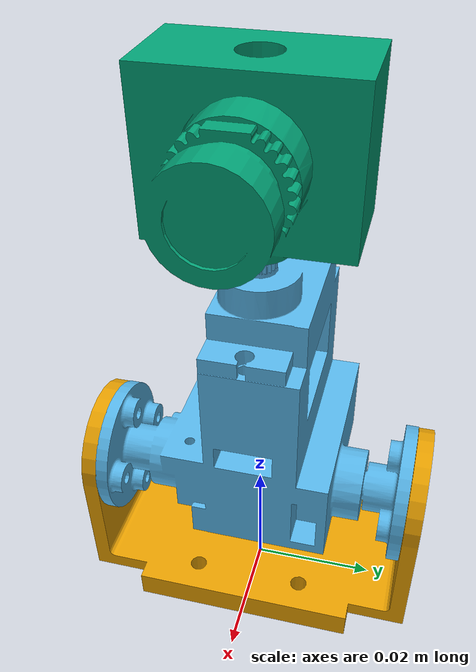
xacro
<?xml version="1.0"?>

<robot name="pan_tilt" xmlns:xacro="http://www.ros.org/wiki/xacro">
    <link name="base_link">
        <visual>
            <origin xyz="0.00 0.00 0.00" rpy="0.00 0.00 0.00"/>
            <geometry>
                <mesh filename="package://pan_tilt_description/meshes/Base-Link.STL" />
            </geometry>
        </visual>
        <collision>
            <origin xyz="0.00 0.00 0.00" rpy="0.00 0.00 0.00"/>
            <geometry>
                <mesh filename="package://pan_tilt_description/meshes/Base-Link-col.STL" />
            </geometry>
        </collision>
        <inertial>
            <mass value="0.022"/>
            <origin xyz="0.000 0.000 0.007" rpy="0.0 0.0 0.0"/>
            <inertia ixx="0.000009" ixy="0.000000" ixz="0.000000"
                     iyy="0.000003" iyz="0.000000"
                     izz="0.000009" />
        </inertial>
    </link>

    <joint name="tilt_joint" type="revolute">
        <parent link="base_link"/>
        <child link="tilt_link"/>
        <origin xyz="0.00 -0.025 0.022" rpy="0.00 0.00 0.00"/>
        <axis xyz="0 1 0"/>
        <limit velocity="3.14" effort="10" lower="-3.14" upper="3.14"/>
    </joint>

    <link name="tilt_link">
        <visual>
            <origin xyz="0.00 0.00 0.00" rpy="0.00 0.00 0.00"/>
            <geometry>
                <mesh filename="package://pan_tilt_description/meshes/Tilt-Link.STL" />
            </geometry>
        </visual>
        <collision>
            <origin xyz="0.00 0.00 0.00" rpy="0.00 0.00 0.00"/>
            <geometry>
                <mesh filename="package://pan_tilt_description/meshes/Tilt-Link-col.STL" />
            </geometry>
        </collision>
        <inertial>
            <mass value="0.070"/>
            <origin xyz="-0.005 0.025 0.010" rpy="0.0 0.0 0.0"/>
            <inertia ixx="0.000016" ixy="0.000000" ixz="0.000000"
                     iyy="0.000016" iyz="0.000000"
                     izz="0.000011" />
        </inertial>
    </link>

    <joint name="pan_joint" type="revolute">
        <parent link="tilt_link"/>
        <child link="pan_link"/>
        <origin xyz="0.00 0.025 0.042" rpy="0.00 0.00 0.00"/>
        <axis xyz="0 0 1"/>
        <limit velocity="3.14" effort="10" lower="-3.14" upper="3.14"/>
    </joint>

    <link name="pan_link">
        <visual>
            <origin xyz="0.00 0.00 0.00" rpy="0.00 0.00 0.00"/>
            <geometry>
                <mesh filename="package://pan_tilt_description/meshes/Pan-Link.STL" />
            </geometry>
        </visual>
        <collision>
            <origin xyz="0.00 0.00 0.00" rpy="0.00 0.00 0.00"/>
            <geometry>
                <mesh filename="package://pan_tilt_description/meshes/Pan-Link-col.STL" />
            </geometry>
        </collision>
        <inertial>
            <mass value="0.011"/>
            <origin xyz="0.004 0.000 0.014" rpy="0.0 0.0 0.0"/>
            <inertia ixx="0.000001" ixy="0.000000" ixz="0.000000"
                     iyy="0.000001" iyz="0.000000"
                     izz="0.000001" />
        </inertial>
    </link>

    <joint name="end_effector_fixed_joint" type="fixed">
        <parent link="pan_link"/>
        <child link="end_effector_link"/>
        <origin xyz="0.023 0.00 0.015" rpy="0.00 0.00 0.00"/>
    </joint>

    <link name="end_effector_link">
    </link>

</robot>
